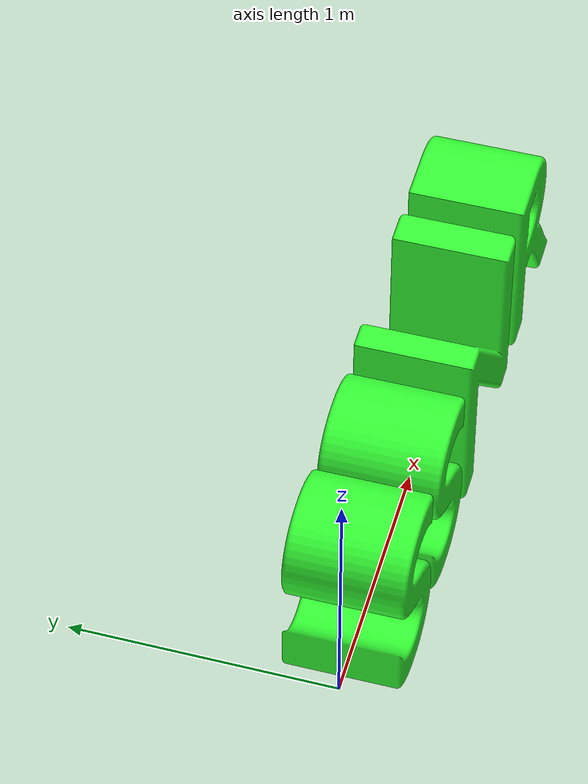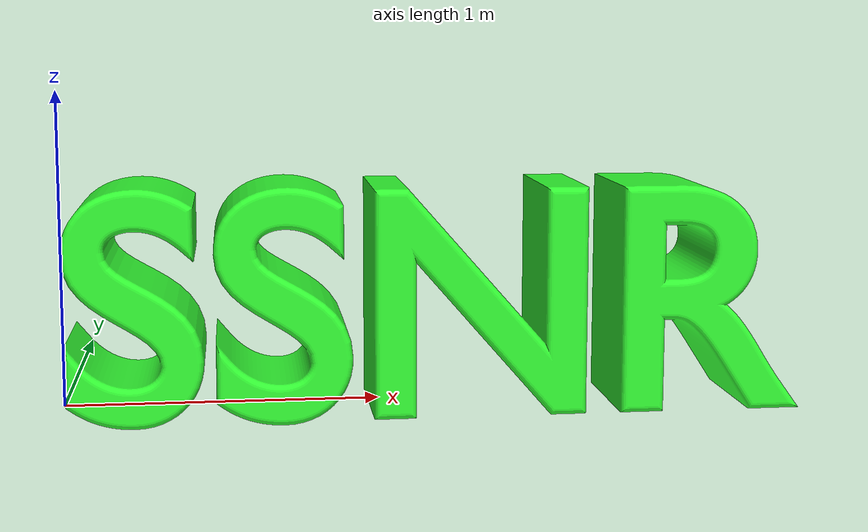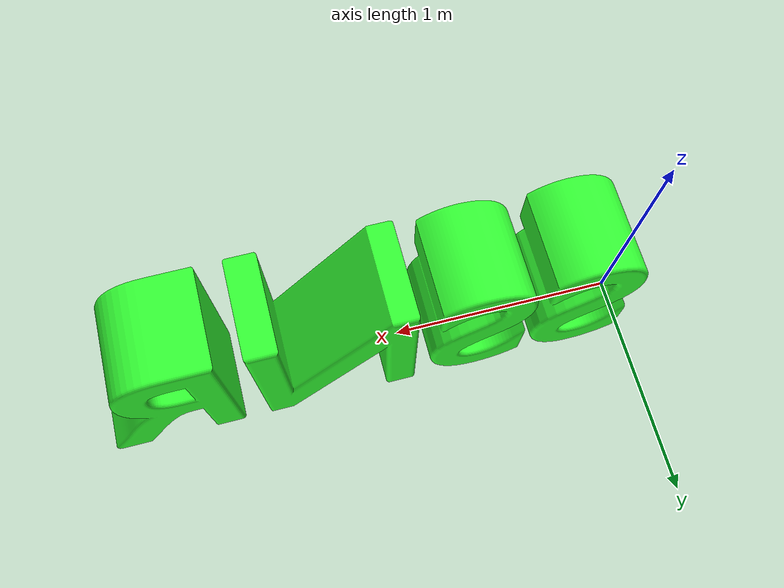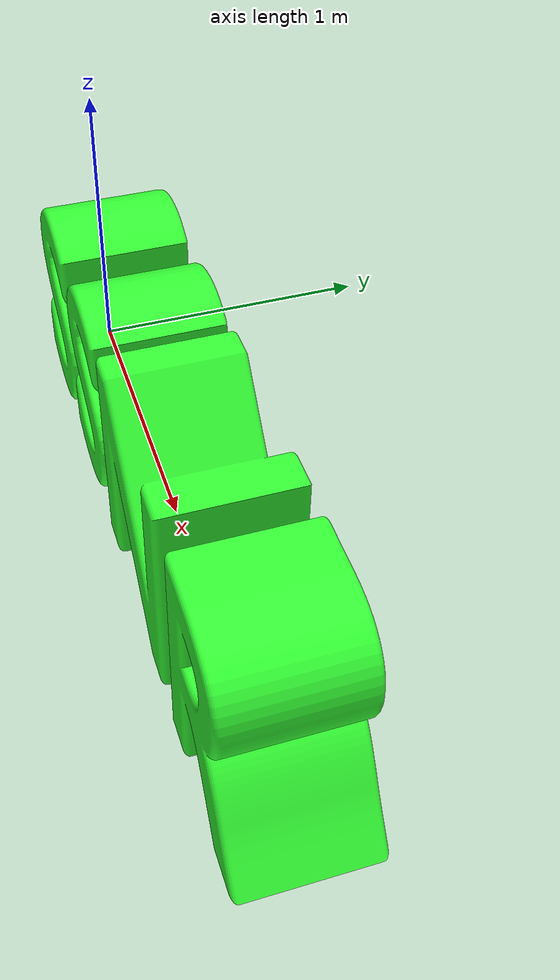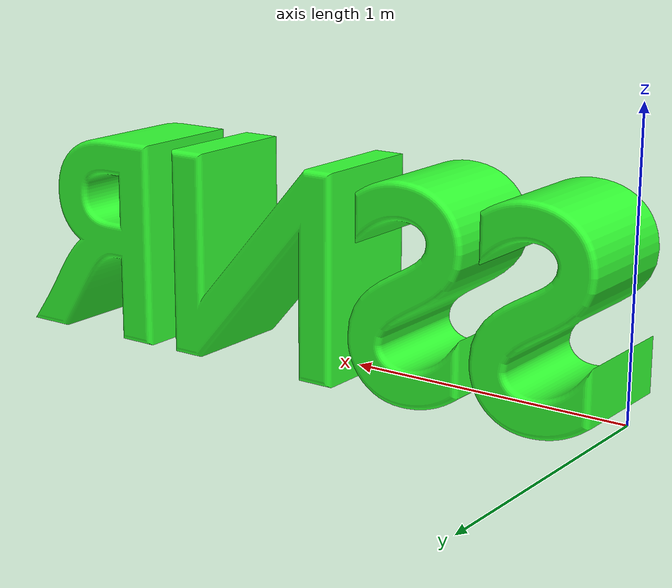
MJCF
<mujoco>
  <compiler meshdir="./meshes/"/>

  <visual>
    <map fogstart="3" fogend="5" force="0.1" znear="0.1"/>
    <rgba haze="0.15 0.25 0.35 1"/>
  </visual>

  <asset>
    <mesh name="Text.001" file="Text.001.stl"/>
    <mesh name="Text.002" file="Text.002.stl"/>
    <mesh name="Text.003" file="Text.003.stl"/>
    <mesh name="Text.004" file="Text.004.stl"/>

    <material name="green" rgba="0.2 1 0.2 1" specular="0.5" shininess="0.5"/>
  </asset>

  <worldbody>
    <body name="object1" >
      <geom type="mesh" mesh="Text.001" material="green" condim="3" density="1000" euler="0 0 0" margin="0.001" solref="0.01 1" />
    <freejoint/></body>

    <body name="object2" >
      <geom type="mesh" mesh="Text.002" material="green" condim="3" density="1000" euler="0 0 0" margin="0.001" solref="0.01 1" />
    <freejoint/></body>

    <body name="object3" >
      <geom type="mesh" mesh="Text.003" material="green" condim="3" density="1000" euler="0 0 0" margin="0.001" solref="0.01 1" />
    <freejoint/></body>

    <body name="object4" >
      <geom type="mesh" mesh="Text.004" material="green" condim="3" density="1000" euler="0 0 0" margin="0.001" solref="0.01 1" />
    <freejoint/></body>

  </worldbody>
</mujoco>
